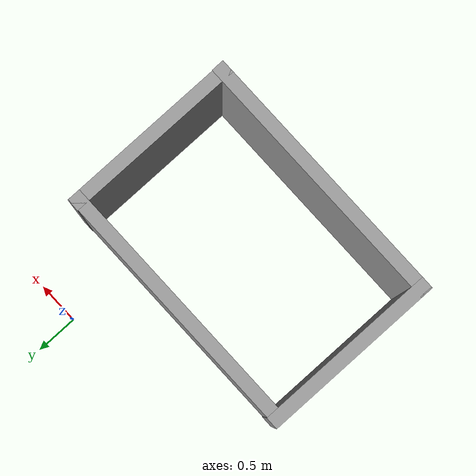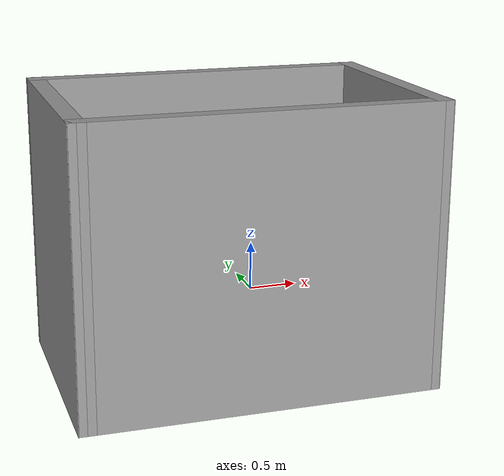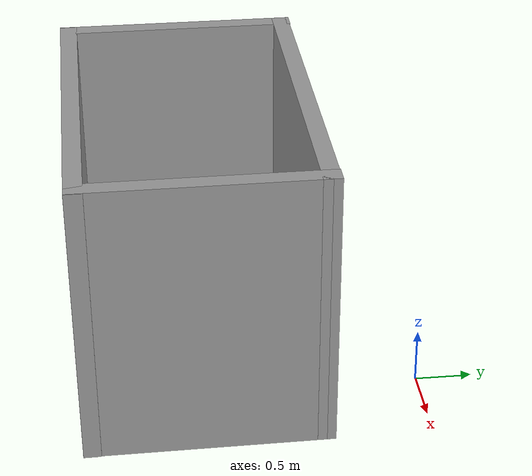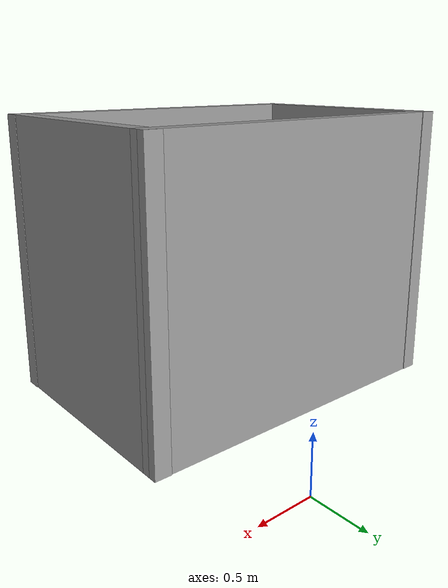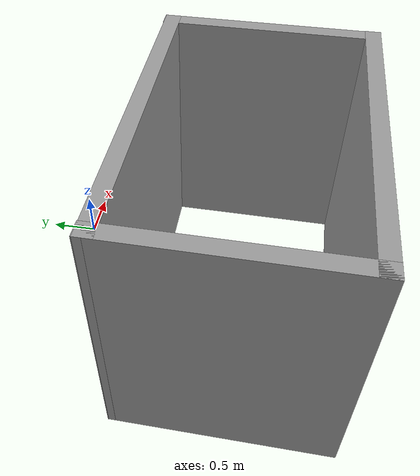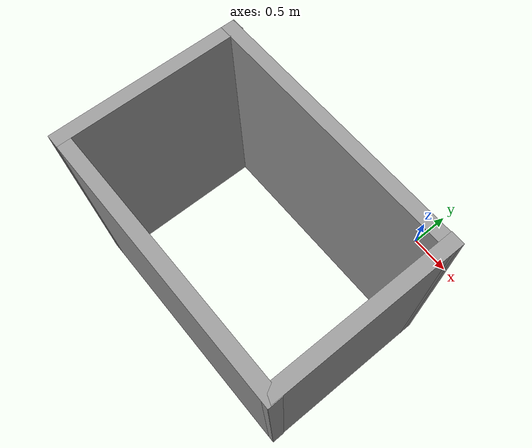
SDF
<?xml version='1.0'?>
<sdf version='1.6'>
  <model name='eurobot_arena'>
    <pose frame=''>-0.828425 -1.88829 0 0 -0 0</pose>
    <link name='Wall_0'>
      <collision name='Wall_0_Collision'>
        <geometry>
          <box>
            <size>2.11182 0.15 2.5</size>
          </box>
        </geometry>
        <pose frame=''>0 0 1.25 0 -0 0</pose>
      </collision>
      <visual name='Wall_0_Visual'>
        <pose frame=''>0 0 1.25 0 -0 0</pose>
        <geometry>
          <box>
            <size>2.11182 0.15 2.5</size>
          </box>
        </geometry>
        <material>
          <script>
            <uri>file://media/materials/scripts/gazebo.material</uri>
            <name>Gazebo/Grey</name>
          </script>
          <ambient>1 1 1 1</ambient>
        </material>
        <meta>
          <layer>0</layer>
        </meta>
      </visual>
      <pose frame=''>-1.48418 0 0 0 0 -1.5775</pose>
    </link>
    <link name='Wall_1'>
      <collision name='Wall_1_Collision'>
        <geometry>
          <box>
            <size>3.11835 0.15 2.5</size>
          </box>
        </geometry>
        <pose frame=''>0 0 1.25 0 -0 0</pose>
      </collision>
      <visual name='Wall_1_Visual'>
        <pose frame=''>0 0 1.25 0 -0 0</pose>
        <geometry>
          <box>
            <size>3.11835 0.15 2.5</size>
          </box>
        </geometry>
        <material>
          <script>
            <uri>file://media/materials/scripts/gazebo.material</uri>
            <name>Gazebo/Grey</name>
          </script>
          <ambient>1 1 1 1</ambient>
        </material>
        <meta>
          <layer>0</layer>
        </meta>
      </visual>
      <pose frame=''>0 -0.980889 0 0 -0 0</pose>
    </link>
    <link name='Wall_2'>
      <collision name='Wall_2_Collision'>
        <geometry>
          <box>
            <size>2.11182 0.15 2.5</size>
          </box>
        </geometry>
        <pose frame=''>0 0 1.25 0 -0 0</pose>
      </collision>
      <visual name='Wall_2_Visual'>
        <pose frame=''>0 0 1.25 0 -0 0</pose>
        <geometry>
          <box>
            <size>2.11182 0.15 2.5</size>
          </box>
        </geometry>
        <material>
          <script>
            <uri>file://media/materials/scripts/gazebo.material</uri>
            <name>Gazebo/Grey</name>
          </script>
          <ambient>1 1 1 1</ambient>
        </material>
        <meta>
          <layer>0</layer>
        </meta>
      </visual>
      <pose frame=''>1.48418 0 0 0 -0 1.56409</pose>
    </link>
    <link name='Wall_3'>
      <collision name='Wall_3_Collision'>
        <geometry>
          <box>
            <size>3.11835 0.15 2.5</size>
          </box>
        </geometry>
        <pose frame=''>0 0 1.25 0 -0 0</pose>
      </collision>
      <visual name='Wall_3_Visual'>
        <pose frame=''>0 0 1.25 0 -0 0</pose>
        <geometry>
          <box>
            <size>3.11835 0.15 2.5</size>
          </box>
        </geometry>
        <material>
          <script>
            <uri>file://media/materials/scripts/gazebo.material</uri>
            <name>Gazebo/Grey</name>
          </script>
          <ambient>1 1 1 1</ambient>
        </material>
        <meta>
          <layer>0</layer>
        </meta>
      </visual>
      <pose frame=''>0.006575 0.974314 0 0 -0 3.14159</pose>
    </link>
    <static>1</static>
  </model>
</sdf>
